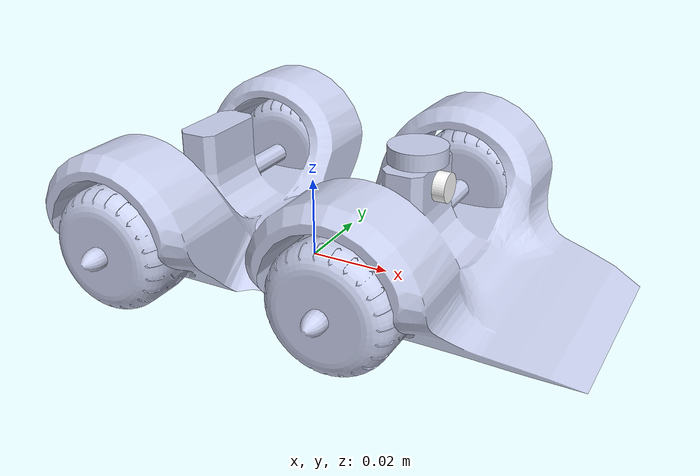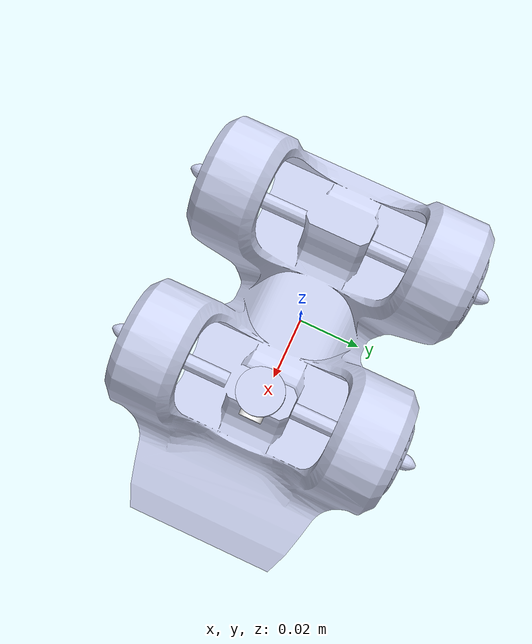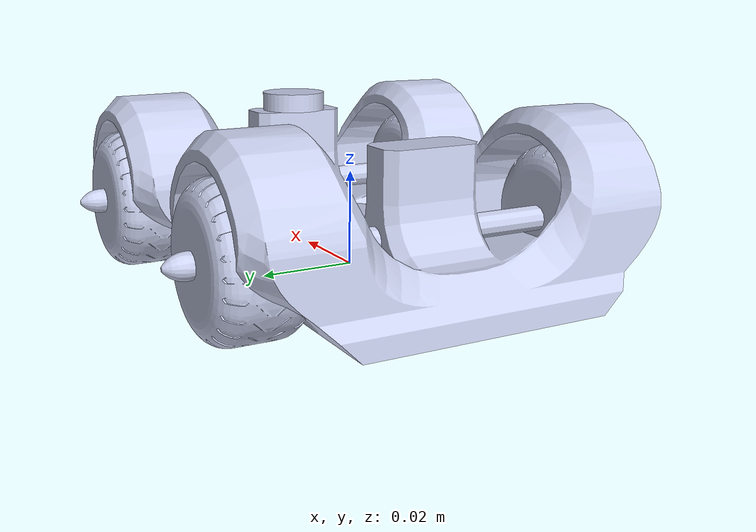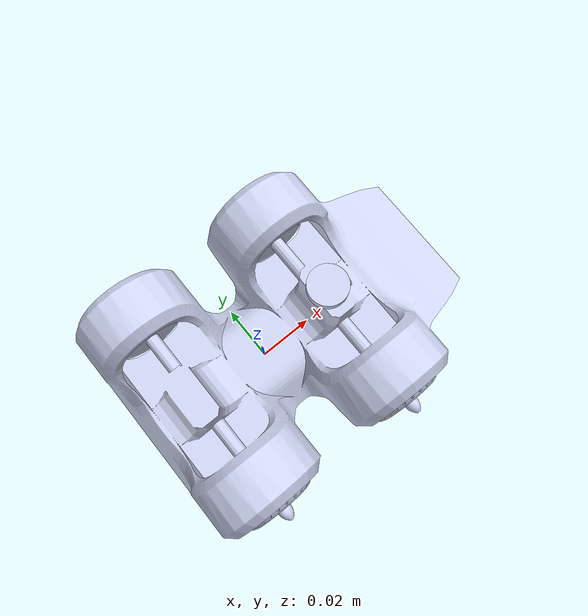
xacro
<?xml version="1.0" encoding="utf-8"?>

<robot name="wheel_robot" xmlns:xacro="http://www.ros.org/wiki/xacro">

<xacro:include filename="$(find wheel_robot)/gazebo/wheel_robot_materials.gazebo" />
<xacro:include filename="$(find wheel_robot)/gazebo/wheel_robot_physics.gazebo" />
<xacro:include filename="$(find wheel_robot)/gazebo/wheel_robot_plugins.gazebo" />

<link
  name="body">
  <inertial>
    <origin
      xyz="0.00345845448617112 1.27437082477622E-07 0.0114321781136311"
      rpy="0 0 0" />
    <mass
      value="0.0900071946882429" />
    <inertia
      ixx="4.90631252188324E-05"
      ixy="-3.71280927313851E-10"
      ixz="3.11865416550059E-06"
      iyy="9.92493244541927E-05"
      iyz="5.34357625296012E-10"
      izz="0.000130457547159725" />
  </inertial>
  <visual>
    <origin
      xyz="0 0 0"
      rpy="0 0 0" />
    <geometry>
      <mesh
        filename="package://wheel_robot/meshes/body.STL" />
    </geometry>
    <material
      name="">
      <color
        rgba="0.792156862745098 0.819607843137255 0.933333333333333 1" />
    </material>
  </visual>
  <collision>
    <origin
      xyz="0 0 0"
      rpy="0 0 0" />
    <geometry>
      <mesh
        filename="package://wheel_robot/meshes/body.STL" />
    </geometry>
  </collision>
</link>
<link
  name="wheel_L1">
  <inertial>
    <origin
      xyz="-2.6099E-07 3.4456E-05 0.030308"
      rpy="0 0 0" />
    <mass
      value="0.011427" />
    <inertia
      ixx="9.9372E-07"
      ixy="-8.0514E-16"
      ixz="-7.0822E-13"
      iyy="9.9372E-07"
      iyz="9.3503E-11"
      izz="1.076E-06" />
  </inertial>
  <visual>
    <origin
      xyz="0 0 0"
      rpy="0 0 0" />
    <geometry>
      <mesh
        filename="package://wheel_robot/meshes/wheel_L1.STL" />
    </geometry>
    <material
      name="">
      <color
        rgba="0.79216 0.81961 0.93333 1" />
    </material>
  </visual>
  <collision>
    <origin
      xyz="0 0 0"
      rpy="0 0 0" />
    <geometry>
      <mesh
        filename="package://wheel_robot/meshes/wheel_L1.STL" />
    </geometry>
  </collision>
</link>
<joint
  name="wheel_LJ1"
  type="continuous">
  <origin
    xyz="-0.0275 0.005 0.013"
    rpy="-1.5697 0.00028247 0" />
  <parent
    link="body" />
  <child
    link="wheel_L1" />
  <axis
    xyz="0 0 1" />
</joint>
<link
  name="wheel_L2">
  <inertial>
    <origin
      xyz="3.46944695195361E-18 0 0.0303082888568348"
      rpy="0 0 0" />
    <mass
      value="0.0114267079612173" />
    <inertia
      ixx="9.93716942507504E-07"
      ixy="-3.70086205075385E-23"
      ixz="1.27241181373739E-17"
      iyy="9.93716942507503E-07"
      iyz="1.1512928325542E-17"
      izz="1.07596376943681E-06" />
  </inertial>
  <visual>
    <origin
      xyz="0 0 0"
      rpy="0 0 0" />
    <geometry>
      <mesh
        filename="package://wheel_robot/meshes/wheel_L2.STL" />
    </geometry>
    <material
      name="">
      <color
        rgba="0.792156862745098 0.819607843137255 0.933333333333333 1" />
    </material>
  </visual>
  <collision>
    <origin
      xyz="0 0 0"
      rpy="0 0 0" />
    <geometry>
      <mesh
        filename="package://wheel_robot/meshes/wheel_L2.STL" />
    </geometry>
  </collision>
</link>
<joint
  name="wheel_LJ2"
  type="continuous">
  <origin
    xyz="0.0275 0.005 0.013"
    rpy="-1.5708 0 0" />
  <parent
    link="body" />
  <child
    link="wheel_L2" />
  <axis
    xyz="0 0 1" />
</joint>
<link
  name="wheel_R1">
  <inertial>
    <origin
      xyz="2.46330733588707E-16 -1.73472347597681E-18 -0.030308288856835"
      rpy="0 0 0" />
    <mass
      value="0.0114267079612173" />
    <inertia
      ixx="9.93716942507501E-07"
      ixy="-5.79591884295001E-23"
      ixz="1.27233188660228E-17"
      iyy="9.93716942507501E-07"
      iyz="-1.15125097717269E-17"
      izz="1.0759637694368E-06" />
  </inertial>
  <visual>
    <origin
      xyz="0 0 0"
      rpy="0 0 0" />
    <geometry>
      <mesh
        filename="package://wheel_robot/meshes/wheel_R1.STL" />
    </geometry>
    <material
      name="">
      <color
        rgba="0.792156862745098 0.819607843137255 0.933333333333333 1" />
    </material>
  </visual>
  <collision>
    <origin
      xyz="0 0 0"
      rpy="0 0 0" />
    <geometry>
      <mesh
        filename="package://wheel_robot/meshes/wheel_R1.STL" />
    </geometry>
  </collision>
</link>
<joint
  name="wheel_RJ1"
  type="continuous">
  <origin
    xyz="-0.0275 -0.005 0.013"
    rpy="-1.5708 0 0" />
  <parent
    link="body" />
  <child
    link="wheel_R1" />
  <axis
    xyz="0 0 1" />
</joint>
<link
  name="wheel_R2">
  <inertial>
    <origin
      xyz="-5.89805981832114E-17 3.46944695195361E-18 -0.0303082888568349"
      rpy="0 0 0" />
    <mass
      value="0.0114267079612173" />
    <inertia
      ixx="9.93716942507502E-07"
      ixy="-3.75643395682769E-22"
      ixz="1.4972619190029E-17"
      iyy="9.93716942507502E-07"
      iyz="-8.3826884030546E-18"
      izz="1.07596376943681E-06" />
  </inertial>
  <visual>
    <origin
      xyz="0 0 0"
      rpy="0 0 0" />
    <geometry>
      <mesh
        filename="package://wheel_robot/meshes/wheel_R2.STL" />
    </geometry>
    <material
      name="">
      <color
        rgba="0.792156862745098 0.819607843137255 0.933333333333333 1" />
    </material>
  </visual>
  <collision>
    <origin
      xyz="0 0 0"
      rpy="0 0 0" />
    <geometry>
      <mesh
        filename="package://wheel_robot/meshes/wheel_R2.STL" />
    </geometry>
  </collision>
</link>
<joint
  name="wheel_RJ2"
  type="continuous">
  <origin
    xyz="0.0275 -0.005 0.013"
    rpy="-1.5708 -0.00018056 0" />
  <parent
    link="body" />
  <child
    link="wheel_R2" />
  <axis
    xyz="0 0 1" />
</joint>
<link
  name="lidar">
  <inertial>
    <origin
      xyz="0 1.89580779882133E-19 0.00382014388489209"
      rpy="0 0 0" />
    <mass
      value="0.000655022068273471" />
    <inertia
      ixx="8.77065641646922E-09"
      ixy="-1.34506811361043E-41"
      ixz="1.82374187768398E-41"
      iyy="8.77065641646922E-09"
      iyz="-4.5783991086801E-25"
      izz="1.5208646385569E-08" />
  </inertial>
  <visual>
    <origin
      xyz="0 0 0"
      rpy="0 0 0" />
    <geometry>
      <mesh
        filename="package://wheel_robot/meshes/lidar.STL" />
    </geometry>
    <material
      name="">
      <color
        rgba="0.792156862745098 0.819607843137255 0.933333333333333 1" />
    </material>
  </visual>
  <collision>
    <origin
      xyz="0 0 0"
      rpy="0 0 0" />
    <geometry>
      <mesh
        filename="package://wheel_robot/meshes/lidar.STL" />
    </geometry>
  </collision>
</link>
<joint
  name="lidar_joint"
  type="fixed">
  <origin
    xyz="0.0275 0 0.028"
    rpy="0 0 0" />
  <parent
    link="body" />
  <child
    link="lidar" />
  <axis
    xyz="0 0 0" />
</joint>
<link
  name="camera">
  <inertial>
    <origin
      xyz="0 0 0"
      rpy="0 0 0" />
    <mass
      value="0" />
    <inertia
      ixx="0"
      ixy="0"
      ixz="0"
      iyy="0"
      iyz="0"
      izz="0" />
  </inertial>
  <visual>
    <origin
      xyz="0 0 0"
      rpy="0 0 0" />
    <geometry>
      <mesh
        filename="package://wheel_robot/meshes/camera.STL" />
    </geometry>
    <material
      name="">
      <color
        rgba="1 1 1 1" />
    </material>
  </visual>
  <collision>
    <origin
      xyz="0 0 0"
      rpy="0 0 0" />
    <geometry>
      <mesh
        filename="package://wheel_robot/meshes/camera.STL" />
    </geometry>
  </collision>
</link>
<joint
  name="camera_joint"
  type="fixed">
  <origin
    xyz="0.0304999999999997 0 0.0250000000000006"
    rpy="0 0 0" />
  <parent
    link="body" />
  <child
    link="camera" />
  <axis
    xyz="0 0 0" />
</joint>
</robot>

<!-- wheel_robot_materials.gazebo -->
<robot name="wheel_robot" xmlns:xacro="http://www.ros.org/wiki/xacro">

<xacro:property name="body_color" value="Gazebo/Turquoise" />
<xacro:property name="wheels" value="Gazebo/FlatBlack" />
<xacro:property name="lidar" value="Gazebo/Purple" />
<xacro:property name="camera" value="Gazebo/Yellow" />

<gazebo reference="body">
    <material>${body_color}</material>
</gazebo>

<gazebo reference="wheel_L1">
    <material>${wheels}</material>
</gazebo>

<gazebo reference="wheel_L2">
    <material>${wheels}</material>
</gazebo>

<gazebo reference="wheel_R1">
    <material>${wheels}</material>
</gazebo>

<gazebo reference="wheel_R2">
    <material>${wheels}</material>
</gazebo>

<gazebo reference="lidar">
    <material>${lidar}</material>
</gazebo>

<gazebo reference="camera">
    <material>${camera}</material>
</gazebo>

</robot>
